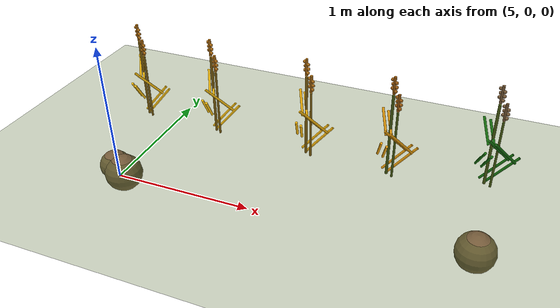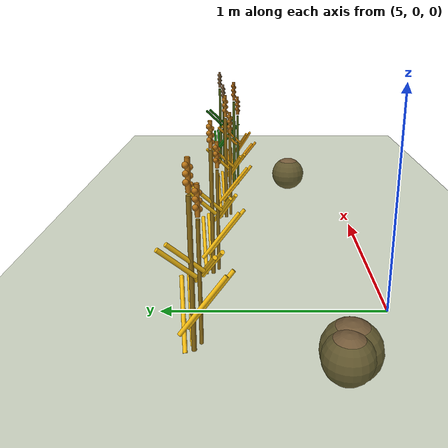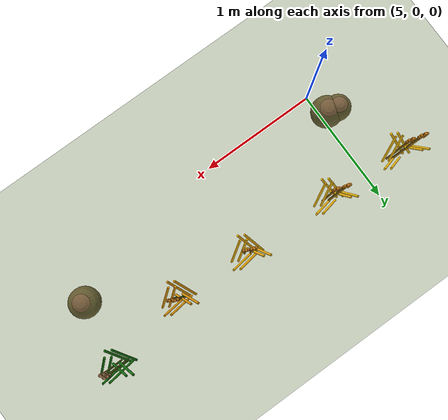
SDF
<sdf version="1.6">
 <world name="default">
  <model name="ground">
   <static>true</static>
   <link name="link">
    <collision name="col"><geometry><plane><normal>0 0 1</normal><size>40 40</size></plane></geometry></collision>
    <visual name="vis">
     <geometry><plane><normal>0 0 1</normal><size>40 40</size></plane></geometry>
     <material><ambient>0.30 0.40 0.15 1</ambient><diffuse>0.30 0.40 0.15 1</diffuse></material>
    </visual>
   </link>
  </model>
  <model name="plant_16">
   <static>true</static>
   <pose>4.72 0.82 0 0 0 0</pose>
   <link name="link">
    <visual name="stem_0">
     <pose>0.000 0.000 0.320 0.000 0.000 0.000</pose>
     <geometry><cylinder><radius>0.01</radius><length>0.64</length></cylinder></geometry>
     <material><ambient>0.55 0.42 0.08 1</ambient><diffuse>0.55 0.42 0.08 1</diffuse></material>
    </visual>
    <visual name="leaf_0_0">
     <pose>0.055 0.045 0.130 0.000 0.700 0.150</pose>
     <geometry><cylinder><radius>0.009</radius><length>0.3</length></cylinder></geometry>
     <material><ambient>0.95 0.73 0.06 1</ambient><diffuse>0.95 0.73 0.06 1</diffuse></material>
    </visual>
    <visual name="leaf_0_1">
     <pose>-0.055 -0.045 0.230 0.000 -0.720 1.900</pose>
     <geometry><cylinder><radius>0.009</radius><length>0.28</length></cylinder></geometry>
     <material><ambient>0.95 0.73 0.06 1</ambient><diffuse>0.95 0.73 0.06 1</diffuse></material>
    </visual>
    <visual name="leaf_0_2">
     <pose>0.055 -0.045 0.320 0.000 0.780 3.700</pose>
     <geometry><cylinder><radius>0.009</radius><length>0.24</length></cylinder></geometry>
     <material><ambient>0.95 0.73 0.06 1</ambient><diffuse>0.95 0.73 0.06 1</diffuse></material>
    </visual>
    <visual name="leaf_0_3">
     <pose>-0.055 0.045 0.400 0.000 -0.800 5.200</pose>
     <geometry><cylinder><radius>0.009</radius><length>0.2</length></cylinder></geometry>
     <material><ambient>0.95 0.73 0.06 1</ambient><diffuse>0.95 0.73 0.06 1</diffuse></material>
    </visual>
    <visual name="stem_1">
     <pose>0.045 -0.025 0.265 0.000 0.000 0.000</pose>
     <geometry><cylinder><radius>0.008</radius><length>0.53</length></cylinder></geometry>
     <material><ambient>0.55 0.42 0.08 1</ambient><diffuse>0.55 0.42 0.08 1</diffuse></material>
    </visual>
    <visual name="leaf_1_0">
     <pose>0.100 0.020 0.130 0.000 0.700 0.150</pose>
     <geometry><cylinder><radius>0.009</radius><length>0.3</length></cylinder></geometry>
     <material><ambient>0.95 0.73 0.06 1</ambient><diffuse>0.95 0.73 0.06 1</diffuse></material>
    </visual>
    <visual name="leaf_1_1">
     <pose>-0.010 -0.070 0.230 0.000 -0.720 1.900</pose>
     <geometry><cylinder><radius>0.009</radius><length>0.28</length></cylinder></geometry>
     <material><ambient>0.95 0.73 0.06 1</ambient><diffuse>0.95 0.73 0.06 1</diffuse></material>
    </visual>
    <visual name="leaf_1_2">
     <pose>0.100 -0.070 0.320 0.000 0.780 3.700</pose>
     <geometry><cylinder><radius>0.009</radius><length>0.24</length></cylinder></geometry>
     <material><ambient>0.95 0.73 0.06 1</ambient><diffuse>0.95 0.73 0.06 1</diffuse></material>
    </visual>
    <visual name="leaf_1_3">
     <pose>-0.010 0.020 0.400 0.000 -0.800 5.200</pose>
     <geometry><cylinder><radius>0.009</radius><length>0.2</length></cylinder></geometry>
     <material><ambient>0.95 0.73 0.06 1</ambient><diffuse>0.95 0.73 0.06 1</diffuse></material>
    </visual>
    <visual name="ear_axis_0">
     <pose>0.000 0.000 0.715 0.000 0.000 0.000</pose>
     <geometry><cylinder><radius>0.010</radius><length>0.13</length></cylinder></geometry>
     <material><ambient>0.72 0.45 0.08 1</ambient><diffuse>0.72 0.45 0.08 1</diffuse></material>
    </visual>
    <visual name="grain_0_0">
     <pose>0.012 -0.006 0.675 0.000 0.000 0.000</pose>
     <geometry><sphere><radius>0.012</radius></sphere></geometry>
     <material><ambient>0.72 0.45 0.08 1</ambient><diffuse>0.72 0.45 0.08 1</diffuse></material>
    </visual>
    <visual name="grain_0_1">
     <pose>-0.014 0.006 0.691 0.000 0.000 0.000</pose>
     <geometry><sphere><radius>0.012</radius></sphere></geometry>
     <material><ambient>0.72 0.45 0.08 1</ambient><diffuse>0.72 0.45 0.08 1</diffuse></material>
    </visual>
    <visual name="grain_0_2">
     <pose>0.016 -0.006 0.707 0.000 0.000 0.000</pose>
     <geometry><sphere><radius>0.012</radius></sphere></geometry>
     <material><ambient>0.72 0.45 0.08 1</ambient><diffuse>0.72 0.45 0.08 1</diffuse></material>
    </visual>
    <visual name="grain_0_3">
     <pose>-0.012 0.006 0.723 0.000 0.000 0.000</pose>
     <geometry><sphere><radius>0.012</radius></sphere></geometry>
     <material><ambient>0.72 0.45 0.08 1</ambient><diffuse>0.72 0.45 0.08 1</diffuse></material>
    </visual>
    <visual name="grain_0_4">
     <pose>0.014 -0.006 0.739 0.000 0.000 0.000</pose>
     <geometry><sphere><radius>0.012</radius></sphere></geometry>
     <material><ambient>0.72 0.45 0.08 1</ambient><diffuse>0.72 0.45 0.08 1</diffuse></material>
    </visual>
    <visual name="grain_0_5">
     <pose>-0.016 0.006 0.755 0.000 0.000 0.000</pose>
     <geometry><sphere><radius>0.012</radius></sphere></geometry>
     <material><ambient>0.72 0.45 0.08 1</ambient><diffuse>0.72 0.45 0.08 1</diffuse></material>
    </visual>
    <visual name="ear_axis_1">
     <pose>0.045 -0.025 0.605 0.000 0.000 0.000</pose>
     <geometry><cylinder><radius>0.010</radius><length>0.13</length></cylinder></geometry>
     <material><ambient>0.72 0.45 0.08 1</ambient><diffuse>0.72 0.45 0.08 1</diffuse></material>
    </visual>
    <visual name="grain_1_0">
     <pose>0.057 -0.031 0.565 0.000 0.000 0.000</pose>
     <geometry><sphere><radius>0.012</radius></sphere></geometry>
     <material><ambient>0.72 0.45 0.08 1</ambient><diffuse>0.72 0.45 0.08 1</diffuse></material>
    </visual>
    <visual name="grain_1_1">
     <pose>0.031 -0.019 0.581 0.000 0.000 0.000</pose>
     <geometry><sphere><radius>0.012</radius></sphere></geometry>
     <material><ambient>0.72 0.45 0.08 1</ambient><diffuse>0.72 0.45 0.08 1</diffuse></material>
    </visual>
    <visual name="grain_1_2">
     <pose>0.061 -0.031 0.597 0.000 0.000 0.000</pose>
     <geometry><sphere><radius>0.012</radius></sphere></geometry>
     <material><ambient>0.72 0.45 0.08 1</ambient><diffuse>0.72 0.45 0.08 1</diffuse></material>
    </visual>
    <visual name="grain_1_3">
     <pose>0.033 -0.019 0.613 0.000 0.000 0.000</pose>
     <geometry><sphere><radius>0.012</radius></sphere></geometry>
     <material><ambient>0.72 0.45 0.08 1</ambient><diffuse>0.72 0.45 0.08 1</diffuse></material>
    </visual>
    <visual name="grain_1_4">
     <pose>0.059 -0.031 0.629 0.000 0.000 0.000</pose>
     <geometry><sphere><radius>0.012</radius></sphere></geometry>
     <material><ambient>0.72 0.45 0.08 1</ambient><diffuse>0.72 0.45 0.08 1</diffuse></material>
    </visual>
    <visual name="grain_1_5">
     <pose>0.029 -0.019 0.645 0.000 0.000 0.000</pose>
     <geometry><sphere><radius>0.012</radius></sphere></geometry>
     <material><ambient>0.72 0.45 0.08 1</ambient><diffuse>0.72 0.45 0.08 1</diffuse></material>
    </visual>
   </link>
  </model>
  <model name="plant_17">
   <static>true</static>
   <pose>5.36 0.79 0 0 0 0</pose>
   <link name="link">
    <visual name="stem_0">
     <pose>0.000 0.000 0.320 0.000 0.000 0.000</pose>
     <geometry><cylinder><radius>0.01</radius><length>0.64</length></cylinder></geometry>
     <material><ambient>0.55 0.42 0.08 1</ambient><diffuse>0.55 0.42 0.08 1</diffuse></material>
    </visual>
    <visual name="leaf_0_0">
     <pose>0.055 0.045 0.130 0.000 0.700 0.150</pose>
     <geometry><cylinder><radius>0.009</radius><length>0.3</length></cylinder></geometry>
     <material><ambient>0.95 0.73 0.06 1</ambient><diffuse>0.95 0.73 0.06 1</diffuse></material>
    </visual>
    <visual name="leaf_0_1">
     <pose>-0.055 -0.045 0.230 0.000 -0.720 1.900</pose>
     <geometry><cylinder><radius>0.009</radius><length>0.28</length></cylinder></geometry>
     <material><ambient>0.95 0.73 0.06 1</ambient><diffuse>0.95 0.73 0.06 1</diffuse></material>
    </visual>
    <visual name="leaf_0_2">
     <pose>0.055 -0.045 0.320 0.000 0.780 3.700</pose>
     <geometry><cylinder><radius>0.009</radius><length>0.24</length></cylinder></geometry>
     <material><ambient>0.95 0.73 0.06 1</ambient><diffuse>0.95 0.73 0.06 1</diffuse></material>
    </visual>
    <visual name="leaf_0_3">
     <pose>-0.055 0.045 0.400 0.000 -0.800 5.200</pose>
     <geometry><cylinder><radius>0.009</radius><length>0.2</length></cylinder></geometry>
     <material><ambient>0.95 0.73 0.06 1</ambient><diffuse>0.95 0.73 0.06 1</diffuse></material>
    </visual>
    <visual name="stem_1">
     <pose>0.045 -0.025 0.265 0.000 0.000 0.000</pose>
     <geometry><cylinder><radius>0.008</radius><length>0.53</length></cylinder></geometry>
     <material><ambient>0.55 0.42 0.08 1</ambient><diffuse>0.55 0.42 0.08 1</diffuse></material>
    </visual>
    <visual name="leaf_1_0">
     <pose>0.100 0.020 0.130 0.000 0.700 0.150</pose>
     <geometry><cylinder><radius>0.009</radius><length>0.3</length></cylinder></geometry>
     <material><ambient>0.95 0.73 0.06 1</ambient><diffuse>0.95 0.73 0.06 1</diffuse></material>
    </visual>
    <visual name="leaf_1_1">
     <pose>-0.010 -0.070 0.230 0.000 -0.720 1.900</pose>
     <geometry><cylinder><radius>0.009</radius><length>0.28</length></cylinder></geometry>
     <material><ambient>0.95 0.73 0.06 1</ambient><diffuse>0.95 0.73 0.06 1</diffuse></material>
    </visual>
    <visual name="leaf_1_2">
     <pose>0.100 -0.070 0.320 0.000 0.780 3.700</pose>
     <geometry><cylinder><radius>0.009</radius><length>0.24</length></cylinder></geometry>
     <material><ambient>0.95 0.73 0.06 1</ambient><diffuse>0.95 0.73 0.06 1</diffuse></material>
    </visual>
    <visual name="leaf_1_3">
     <pose>-0.010 0.020 0.400 0.000 -0.800 5.200</pose>
     <geometry><cylinder><radius>0.009</radius><length>0.2</length></cylinder></geometry>
     <material><ambient>0.95 0.73 0.06 1</ambient><diffuse>0.95 0.73 0.06 1</diffuse></material>
    </visual>
    <visual name="ear_axis_0">
     <pose>0.000 0.000 0.715 0.000 0.000 0.000</pose>
     <geometry><cylinder><radius>0.010</radius><length>0.13</length></cylinder></geometry>
     <material><ambient>0.72 0.45 0.08 1</ambient><diffuse>0.72 0.45 0.08 1</diffuse></material>
    </visual>
    <visual name="grain_0_0">
     <pose>0.012 -0.006 0.675 0.000 0.000 0.000</pose>
     <geometry><sphere><radius>0.012</radius></sphere></geometry>
     <material><ambient>0.72 0.45 0.08 1</ambient><diffuse>0.72 0.45 0.08 1</diffuse></material>
    </visual>
    <visual name="grain_0_1">
     <pose>-0.014 0.006 0.691 0.000 0.000 0.000</pose>
     <geometry><sphere><radius>0.012</radius></sphere></geometry>
     <material><ambient>0.72 0.45 0.08 1</ambient><diffuse>0.72 0.45 0.08 1</diffuse></material>
    </visual>
    <visual name="grain_0_2">
     <pose>0.016 -0.006 0.707 0.000 0.000 0.000</pose>
     <geometry><sphere><radius>0.012</radius></sphere></geometry>
     <material><ambient>0.72 0.45 0.08 1</ambient><diffuse>0.72 0.45 0.08 1</diffuse></material>
    </visual>
    <visual name="grain_0_3">
     <pose>-0.012 0.006 0.723 0.000 0.000 0.000</pose>
     <geometry><sphere><radius>0.012</radius></sphere></geometry>
     <material><ambient>0.72 0.45 0.08 1</ambient><diffuse>0.72 0.45 0.08 1</diffuse></material>
    </visual>
    <visual name="grain_0_4">
     <pose>0.014 -0.006 0.739 0.000 0.000 0.000</pose>
     <geometry><sphere><radius>0.012</radius></sphere></geometry>
     <material><ambient>0.72 0.45 0.08 1</ambient><diffuse>0.72 0.45 0.08 1</diffuse></material>
    </visual>
    <visual name="grain_0_5">
     <pose>-0.016 0.006 0.755 0.000 0.000 0.000</pose>
     <geometry><sphere><radius>0.012</radius></sphere></geometry>
     <material><ambient>0.72 0.45 0.08 1</ambient><diffuse>0.72 0.45 0.08 1</diffuse></material>
    </visual>
    <visual name="ear_axis_1">
     <pose>0.045 -0.025 0.605 0.000 0.000 0.000</pose>
     <geometry><cylinder><radius>0.010</radius><length>0.13</length></cylinder></geometry>
     <material><ambient>0.72 0.45 0.08 1</ambient><diffuse>0.72 0.45 0.08 1</diffuse></material>
    </visual>
    <visual name="grain_1_0">
     <pose>0.057 -0.031 0.565 0.000 0.000 0.000</pose>
     <geometry><sphere><radius>0.012</radius></sphere></geometry>
     <material><ambient>0.72 0.45 0.08 1</ambient><diffuse>0.72 0.45 0.08 1</diffuse></material>
    </visual>
    <visual name="grain_1_1">
     <pose>0.031 -0.019 0.581 0.000 0.000 0.000</pose>
     <geometry><sphere><radius>0.012</radius></sphere></geometry>
     <material><ambient>0.72 0.45 0.08 1</ambient><diffuse>0.72 0.45 0.08 1</diffuse></material>
    </visual>
    <visual name="grain_1_2">
     <pose>0.061 -0.031 0.597 0.000 0.000 0.000</pose>
     <geometry><sphere><radius>0.012</radius></sphere></geometry>
     <material><ambient>0.72 0.45 0.08 1</ambient><diffuse>0.72 0.45 0.08 1</diffuse></material>
    </visual>
    <visual name="grain_1_3">
     <pose>0.033 -0.019 0.613 0.000 0.000 0.000</pose>
     <geometry><sphere><radius>0.012</radius></sphere></geometry>
     <material><ambient>0.72 0.45 0.08 1</ambient><diffuse>0.72 0.45 0.08 1</diffuse></material>
    </visual>
    <visual name="grain_1_4">
     <pose>0.059 -0.031 0.629 0.000 0.000 0.000</pose>
     <geometry><sphere><radius>0.012</radius></sphere></geometry>
     <material><ambient>0.72 0.45 0.08 1</ambient><diffuse>0.72 0.45 0.08 1</diffuse></material>
    </visual>
    <visual name="grain_1_5">
     <pose>0.029 -0.019 0.645 0.000 0.000 0.000</pose>
     <geometry><sphere><radius>0.012</radius></sphere></geometry>
     <material><ambient>0.72 0.45 0.08 1</ambient><diffuse>0.72 0.45 0.08 1</diffuse></material>
    </visual>
   </link>
  </model>
  <model name="plant_18">
   <static>true</static>
   <pose>6.13 0.76 0 0 0 0</pose>
   <link name="link">
    <visual name="stem_0">
     <pose>0.000 0.000 0.320 0.000 0.000 0.000</pose>
     <geometry><cylinder><radius>0.01</radius><length>0.64</length></cylinder></geometry>
     <material><ambient>0.55 0.42 0.08 1</ambient><diffuse>0.55 0.42 0.08 1</diffuse></material>
    </visual>
    <visual name="leaf_0_0">
     <pose>0.055 0.045 0.130 0.000 0.700 0.150</pose>
     <geometry><cylinder><radius>0.009</radius><length>0.3</length></cylinder></geometry>
     <material><ambient>0.92 0.68 0.04 1</ambient><diffuse>0.92 0.68 0.04 1</diffuse></material>
    </visual>
    <visual name="leaf_0_1">
     <pose>-0.055 -0.045 0.230 0.000 -0.720 1.900</pose>
     <geometry><cylinder><radius>0.009</radius><length>0.28</length></cylinder></geometry>
     <material><ambient>0.92 0.68 0.04 1</ambient><diffuse>0.92 0.68 0.04 1</diffuse></material>
    </visual>
    <visual name="leaf_0_2">
     <pose>0.055 -0.045 0.320 0.000 0.780 3.700</pose>
     <geometry><cylinder><radius>0.009</radius><length>0.24</length></cylinder></geometry>
     <material><ambient>0.92 0.68 0.04 1</ambient><diffuse>0.92 0.68 0.04 1</diffuse></material>
    </visual>
    <visual name="leaf_0_3">
     <pose>-0.055 0.045 0.400 0.000 -0.800 5.200</pose>
     <geometry><cylinder><radius>0.009</radius><length>0.2</length></cylinder></geometry>
     <material><ambient>0.92 0.68 0.04 1</ambient><diffuse>0.92 0.68 0.04 1</diffuse></material>
    </visual>
    <visual name="stem_1">
     <pose>0.045 -0.025 0.265 0.000 0.000 0.000</pose>
     <geometry><cylinder><radius>0.008</radius><length>0.53</length></cylinder></geometry>
     <material><ambient>0.55 0.42 0.08 1</ambient><diffuse>0.55 0.42 0.08 1</diffuse></material>
    </visual>
    <visual name="leaf_1_0">
     <pose>0.100 0.020 0.130 0.000 0.700 0.150</pose>
     <geometry><cylinder><radius>0.009</radius><length>0.3</length></cylinder></geometry>
     <material><ambient>0.92 0.68 0.04 1</ambient><diffuse>0.92 0.68 0.04 1</diffuse></material>
    </visual>
    <visual name="leaf_1_1">
     <pose>-0.010 -0.070 0.230 0.000 -0.720 1.900</pose>
     <geometry><cylinder><radius>0.009</radius><length>0.28</length></cylinder></geometry>
     <material><ambient>0.92 0.68 0.04 1</ambient><diffuse>0.92 0.68 0.04 1</diffuse></material>
    </visual>
    <visual name="leaf_1_2">
     <pose>0.100 -0.070 0.320 0.000 0.780 3.700</pose>
     <geometry><cylinder><radius>0.009</radius><length>0.24</length></cylinder></geometry>
     <material><ambient>0.92 0.68 0.04 1</ambient><diffuse>0.92 0.68 0.04 1</diffuse></material>
    </visual>
    <visual name="leaf_1_3">
     <pose>-0.010 0.020 0.400 0.000 -0.800 5.200</pose>
     <geometry><cylinder><radius>0.009</radius><length>0.2</length></cylinder></geometry>
     <material><ambient>0.92 0.68 0.04 1</ambient><diffuse>0.92 0.68 0.04 1</diffuse></material>
    </visual>
    <visual name="ear_axis_0">
     <pose>0.000 0.000 0.715 0.000 0.000 0.000</pose>
     <geometry><cylinder><radius>0.010</radius><length>0.13</length></cylinder></geometry>
     <material><ambient>0.68 0.43 0.08 1</ambient><diffuse>0.68 0.43 0.08 1</diffuse></material>
    </visual>
    <visual name="grain_0_0">
     <pose>0.012 -0.006 0.675 0.000 0.000 0.000</pose>
     <geometry><sphere><radius>0.012</radius></sphere></geometry>
     <material><ambient>0.68 0.43 0.08 1</ambient><diffuse>0.68 0.43 0.08 1</diffuse></material>
    </visual>
    <visual name="grain_0_1">
     <pose>-0.014 0.006 0.691 0.000 0.000 0.000</pose>
     <geometry><sphere><radius>0.012</radius></sphere></geometry>
     <material><ambient>0.68 0.43 0.08 1</ambient><diffuse>0.68 0.43 0.08 1</diffuse></material>
    </visual>
    <visual name="grain_0_2">
     <pose>0.016 -0.006 0.707 0.000 0.000 0.000</pose>
     <geometry><sphere><radius>0.012</radius></sphere></geometry>
     <material><ambient>0.68 0.43 0.08 1</ambient><diffuse>0.68 0.43 0.08 1</diffuse></material>
    </visual>
    <visual name="grain_0_3">
     <pose>-0.012 0.006 0.723 0.000 0.000 0.000</pose>
     <geometry><sphere><radius>0.012</radius></sphere></geometry>
     <material><ambient>0.68 0.43 0.08 1</ambient><diffuse>0.68 0.43 0.08 1</diffuse></material>
    </visual>
    <visual name="grain_0_4">
     <pose>0.014 -0.006 0.739 0.000 0.000 0.000</pose>
     <geometry><sphere><radius>0.012</radius></sphere></geometry>
     <material><ambient>0.68 0.43 0.08 1</ambient><diffuse>0.68 0.43 0.08 1</diffuse></material>
    </visual>
    <visual name="grain_0_5">
     <pose>-0.016 0.006 0.755 0.000 0.000 0.000</pose>
     <geometry><sphere><radius>0.012</radius></sphere></geometry>
     <material><ambient>0.68 0.43 0.08 1</ambient><diffuse>0.68 0.43 0.08 1</diffuse></material>
    </visual>
    <visual name="ear_axis_1">
     <pose>0.045 -0.025 0.605 0.000 0.000 0.000</pose>
     <geometry><cylinder><radius>0.010</radius><length>0.13</length></cylinder></geometry>
     <material><ambient>0.68 0.43 0.08 1</ambient><diffuse>0.68 0.43 0.08 1</diffuse></material>
    </visual>
    <visual name="grain_1_0">
     <pose>0.057 -0.031 0.565 0.000 0.000 0.000</pose>
     <geometry><sphere><radius>0.012</radius></sphere></geometry>
     <material><ambient>0.68 0.43 0.08 1</ambient><diffuse>0.68 0.43 0.08 1</diffuse></material>
    </visual>
    <visual name="grain_1_1">
     <pose>0.031 -0.019 0.581 0.000 0.000 0.000</pose>
     <geometry><sphere><radius>0.012</radius></sphere></geometry>
     <material><ambient>0.68 0.43 0.08 1</ambient><diffuse>0.68 0.43 0.08 1</diffuse></material>
    </visual>
    <visual name="grain_1_2">
     <pose>0.061 -0.031 0.597 0.000 0.000 0.000</pose>
     <geometry><sphere><radius>0.012</radius></sphere></geometry>
     <material><ambient>0.68 0.43 0.08 1</ambient><diffuse>0.68 0.43 0.08 1</diffuse></material>
    </visual>
    <visual name="grain_1_3">
     <pose>0.033 -0.019 0.613 0.000 0.000 0.000</pose>
     <geometry><sphere><radius>0.012</radius></sphere></geometry>
     <material><ambient>0.68 0.43 0.08 1</ambient><diffuse>0.68 0.43 0.08 1</diffuse></material>
    </visual>
    <visual name="grain_1_4">
     <pose>0.059 -0.031 0.629 0.000 0.000 0.000</pose>
     <geometry><sphere><radius>0.012</radius></sphere></geometry>
     <material><ambient>0.68 0.43 0.08 1</ambient><diffuse>0.68 0.43 0.08 1</diffuse></material>
    </visual>
    <visual name="grain_1_5">
     <pose>0.029 -0.019 0.645 0.000 0.000 0.000</pose>
     <geometry><sphere><radius>0.012</radius></sphere></geometry>
     <material><ambient>0.68 0.43 0.08 1</ambient><diffuse>0.68 0.43 0.08 1</diffuse></material>
    </visual>
   </link>
  </model>
  <model name="plant_19">
   <static>true</static>
   <pose>6.76 0.73 0 0 0 0</pose>
   <link name="link">
    <visual name="stem_0">
     <pose>0.000 0.000 0.320 0.000 0.000 0.000</pose>
     <geometry><cylinder><radius>0.01</radius><length>0.64</length></cylinder></geometry>
     <material><ambient>0.30 0.38 0.08 1</ambient><diffuse>0.30 0.38 0.08 1</diffuse></material>
    </visual>
    <visual name="leaf_0_0">
     <pose>0.055 0.045 0.130 0.000 0.700 0.150</pose>
     <geometry><cylinder><radius>0.009</radius><length>0.3</length></cylinder></geometry>
     <material><ambient>0.86 0.58 0.04 1</ambient><diffuse>0.86 0.58 0.04 1</diffuse></material>
    </visual>
    <visual name="leaf_0_1">
     <pose>-0.055 -0.045 0.230 0.000 -0.720 1.900</pose>
     <geometry><cylinder><radius>0.009</radius><length>0.28</length></cylinder></geometry>
     <material><ambient>0.86 0.58 0.04 1</ambient><diffuse>0.86 0.58 0.04 1</diffuse></material>
    </visual>
    <visual name="leaf_0_2">
     <pose>0.055 -0.045 0.320 0.000 0.780 3.700</pose>
     <geometry><cylinder><radius>0.009</radius><length>0.24</length></cylinder></geometry>
     <material><ambient>0.86 0.58 0.04 1</ambient><diffuse>0.86 0.58 0.04 1</diffuse></material>
    </visual>
    <visual name="leaf_0_3">
     <pose>-0.055 0.045 0.400 0.000 -0.800 5.200</pose>
     <geometry><cylinder><radius>0.009</radius><length>0.2</length></cylinder></geometry>
     <material><ambient>0.86 0.58 0.04 1</ambient><diffuse>0.86 0.58 0.04 1</diffuse></material>
    </visual>
    <visual name="stem_1">
     <pose>0.045 -0.025 0.265 0.000 0.000 0.000</pose>
     <geometry><cylinder><radius>0.008</radius><length>0.53</length></cylinder></geometry>
     <material><ambient>0.30 0.38 0.08 1</ambient><diffuse>0.30 0.38 0.08 1</diffuse></material>
    </visual>
    <visual name="leaf_1_0">
     <pose>0.100 0.020 0.130 0.000 0.700 0.150</pose>
     <geometry><cylinder><radius>0.009</radius><length>0.3</length></cylinder></geometry>
     <material><ambient>0.86 0.58 0.04 1</ambient><diffuse>0.86 0.58 0.04 1</diffuse></material>
    </visual>
    <visual name="leaf_1_1">
     <pose>-0.010 -0.070 0.230 0.000 -0.720 1.900</pose>
     <geometry><cylinder><radius>0.009</radius><length>0.28</length></cylinder></geometry>
     <material><ambient>0.86 0.58 0.04 1</ambient><diffuse>0.86 0.58 0.04 1</diffuse></material>
    </visual>
    <visual name="leaf_1_2">
     <pose>0.100 -0.070 0.320 0.000 0.780 3.700</pose>
     <geometry><cylinder><radius>0.009</radius><length>0.24</length></cylinder></geometry>
     <material><ambient>0.86 0.58 0.04 1</ambient><diffuse>0.86 0.58 0.04 1</diffuse></material>
    </visual>
    <visual name="leaf_1_3">
     <pose>-0.010 0.020 0.400 0.000 -0.800 5.200</pose>
     <geometry><cylinder><radius>0.009</radius><length>0.2</length></cylinder></geometry>
     <material><ambient>0.86 0.58 0.04 1</ambient><diffuse>0.86 0.58 0.04 1</diffuse></material>
    </visual>
    <visual name="ear_axis_0">
     <pose>0.000 0.000 0.715 0.000 0.000 0.000</pose>
     <geometry><cylinder><radius>0.010</radius><length>0.13</length></cylinder></geometry>
     <material><ambient>0.62 0.36 0.06 1</ambient><diffuse>0.62 0.36 0.06 1</diffuse></material>
    </visual>
    <visual name="grain_0_0">
     <pose>0.012 -0.006 0.675 0.000 0.000 0.000</pose>
     <geometry><sphere><radius>0.012</radius></sphere></geometry>
     <material><ambient>0.62 0.36 0.06 1</ambient><diffuse>0.62 0.36 0.06 1</diffuse></material>
    </visual>
    <visual name="grain_0_1">
     <pose>-0.014 0.006 0.691 0.000 0.000 0.000</pose>
     <geometry><sphere><radius>0.012</radius></sphere></geometry>
     <material><ambient>0.62 0.36 0.06 1</ambient><diffuse>0.62 0.36 0.06 1</diffuse></material>
    </visual>
    <visual name="grain_0_2">
     <pose>0.016 -0.006 0.707 0.000 0.000 0.000</pose>
     <geometry><sphere><radius>0.012</radius></sphere></geometry>
     <material><ambient>0.62 0.36 0.06 1</ambient><diffuse>0.62 0.36 0.06 1</diffuse></material>
    </visual>
    <visual name="grain_0_3">
     <pose>-0.012 0.006 0.723 0.000 0.000 0.000</pose>
     <geometry><sphere><radius>0.012</radius></sphere></geometry>
     <material><ambient>0.62 0.36 0.06 1</ambient><diffuse>0.62 0.36 0.06 1</diffuse></material>
    </visual>
    <visual name="grain_0_4">
     <pose>0.014 -0.006 0.739 0.000 0.000 0.000</pose>
     <geometry><sphere><radius>0.012</radius></sphere></geometry>
     <material><ambient>0.62 0.36 0.06 1</ambient><diffuse>0.62 0.36 0.06 1</diffuse></material>
    </visual>
    <visual name="grain_0_5">
     <pose>-0.016 0.006 0.755 0.000 0.000 0.000</pose>
     <geometry><sphere><radius>0.012</radius></sphere></geometry>
     <material><ambient>0.62 0.36 0.06 1</ambient><diffuse>0.62 0.36 0.06 1</diffuse></material>
    </visual>
    <visual name="ear_axis_1">
     <pose>0.045 -0.025 0.605 0.000 0.000 0.000</pose>
     <geometry><cylinder><radius>0.010</radius><length>0.13</length></cylinder></geometry>
     <material><ambient>0.62 0.36 0.06 1</ambient><diffuse>0.62 0.36 0.06 1</diffuse></material>
    </visual>
    <visual name="grain_1_0">
     <pose>0.057 -0.031 0.565 0.000 0.000 0.000</pose>
     <geometry><sphere><radius>0.012</radius></sphere></geometry>
     <material><ambient>0.62 0.36 0.06 1</ambient><diffuse>0.62 0.36 0.06 1</diffuse></material>
    </visual>
    <visual name="grain_1_1">
     <pose>0.031 -0.019 0.581 0.000 0.000 0.000</pose>
     <geometry><sphere><radius>0.012</radius></sphere></geometry>
     <material><ambient>0.62 0.36 0.06 1</ambient><diffuse>0.62 0.36 0.06 1</diffuse></material>
    </visual>
    <visual name="grain_1_2">
     <pose>0.061 -0.031 0.597 0.000 0.000 0.000</pose>
     <geometry><sphere><radius>0.012</radius></sphere></geometry>
     <material><ambient>0.62 0.36 0.06 1</ambient><diffuse>0.62 0.36 0.06 1</diffuse></material>
    </visual>
    <visual name="grain_1_3">
     <pose>0.033 -0.019 0.613 0.000 0.000 0.000</pose>
     <geometry><sphere><radius>0.012</radius></sphere></geometry>
     <material><ambient>0.62 0.36 0.06 1</ambient><diffuse>0.62 0.36 0.06 1</diffuse></material>
    </visual>
    <visual name="grain_1_4">
     <pose>0.059 -0.031 0.629 0.000 0.000 0.000</pose>
     <geometry><sphere><radius>0.012</radius></sphere></geometry>
     <material><ambient>0.62 0.36 0.06 1</ambient><diffuse>0.62 0.36 0.06 1</diffuse></material>
    </visual>
    <visual name="grain_1_5">
     <pose>0.029 -0.019 0.645 0.000 0.000 0.000</pose>
     <geometry><sphere><radius>0.012</radius></sphere></geometry>
     <material><ambient>0.62 0.36 0.06 1</ambient><diffuse>0.62 0.36 0.06 1</diffuse></material>
    </visual>
   </link>
  </model>
  <model name="plant_20">
   <static>true</static>
   <pose>7.43 0.87 0 0 0 0</pose>
   <link name="link">
    <visual name="stem_0">
     <pose>0.000 0.000 0.320 0.000 0.000 0.000</pose>
     <geometry><cylinder><radius>0.01</radius><length>0.64</length></cylinder></geometry>
     <material><ambient>0.30 0.38 0.08 1</ambient><diffuse>0.30 0.38 0.08 1</diffuse></material>
    </visual>
    <visual name="leaf_0_0">
     <pose>0.055 0.045 0.130 0.000 0.700 0.150</pose>
     <geometry><cylinder><radius>0.009</radius><length>0.3</length></cylinder></geometry>
     <material><ambient>0.08 0.42 0.05 1</ambient><diffuse>0.08 0.42 0.05 1</diffuse></material>
    </visual>
    <visual name="leaf_0_1">
     <pose>-0.055 -0.045 0.230 0.000 -0.720 1.900</pose>
     <geometry><cylinder><radius>0.009</radius><length>0.28</length></cylinder></geometry>
     <material><ambient>0.08 0.42 0.05 1</ambient><diffuse>0.08 0.42 0.05 1</diffuse></material>
    </visual>
    <visual name="leaf_0_2">
     <pose>0.055 -0.045 0.320 0.000 0.780 3.700</pose>
     <geometry><cylinder><radius>0.009</radius><length>0.24</length></cylinder></geometry>
     <material><ambient>0.08 0.42 0.05 1</ambient><diffuse>0.08 0.42 0.05 1</diffuse></material>
    </visual>
    <visual name="leaf_0_3">
     <pose>-0.055 0.045 0.400 0.000 -0.800 5.200</pose>
     <geometry><cylinder><radius>0.009</radius><length>0.2</length></cylinder></geometry>
     <material><ambient>0.08 0.42 0.05 1</ambient><diffuse>0.08 0.42 0.05 1</diffuse></material>
    </visual>
    <visual name="stem_1">
     <pose>0.045 -0.025 0.265 0.000 0.000 0.000</pose>
     <geometry><cylinder><radius>0.008</radius><length>0.53</length></cylinder></geometry>
     <material><ambient>0.30 0.38 0.08 1</ambient><diffuse>0.30 0.38 0.08 1</diffuse></material>
    </visual>
    <visual name="leaf_1_0">
     <pose>0.100 0.020 0.130 0.000 0.700 0.150</pose>
     <geometry><cylinder><radius>0.009</radius><length>0.3</length></cylinder></geometry>
     <material><ambient>0.08 0.42 0.05 1</ambient><diffuse>0.08 0.42 0.05 1</diffuse></material>
    </visual>
    <visual name="leaf_1_1">
     <pose>-0.010 -0.070 0.230 0.000 -0.720 1.900</pose>
     <geometry><cylinder><radius>0.009</radius><length>0.28</length></cylinder></geometry>
     <material><ambient>0.08 0.42 0.05 1</ambient><diffuse>0.08 0.42 0.05 1</diffuse></material>
    </visual>
    <visual name="leaf_1_2">
     <pose>0.100 -0.070 0.320 0.000 0.780 3.700</pose>
     <geometry><cylinder><radius>0.009</radius><length>0.24</length></cylinder></geometry>
     <material><ambient>0.08 0.42 0.05 1</ambient><diffuse>0.08 0.42 0.05 1</diffuse></material>
    </visual>
    <visual name="leaf_1_3">
     <pose>-0.010 0.020 0.400 0.000 -0.800 5.200</pose>
     <geometry><cylinder><radius>0.009</radius><length>0.2</length></cylinder></geometry>
     <material><ambient>0.08 0.42 0.05 1</ambient><diffuse>0.08 0.42 0.05 1</diffuse></material>
    </visual>
    <visual name="ear_axis_0">
     <pose>0.000 0.000 0.715 0.000 0.000 0.000</pose>
     <geometry><cylinder><radius>0.010</radius><length>0.13</length></cylinder></geometry>
     <material><ambient>0.48 0.36 0.22 1</ambient><diffuse>0.48 0.36 0.22 1</diffuse></material>
    </visual>
    <visual name="grain_0_0">
     <pose>0.012 -0.006 0.675 0.000 0.000 0.000</pose>
     <geometry><sphere><radius>0.012</radius></sphere></geometry>
     <material><ambient>0.48 0.36 0.22 1</ambient><diffuse>0.48 0.36 0.22 1</diffuse></material>
    </visual>
    <visual name="grain_0_1">
     <pose>-0.014 0.006 0.691 0.000 0.000 0.000</pose>
     <geometry><sphere><radius>0.012</radius></sphere></geometry>
     <material><ambient>0.48 0.36 0.22 1</ambient><diffuse>0.48 0.36 0.22 1</diffuse></material>
    </visual>
    <visual name="grain_0_2">
     <pose>0.016 -0.006 0.707 0.000 0.000 0.000</pose>
     <geometry><sphere><radius>0.012</radius></sphere></geometry>
     <material><ambient>0.48 0.36 0.22 1</ambient><diffuse>0.48 0.36 0.22 1</diffuse></material>
    </visual>
    <visual name="grain_0_3">
     <pose>-0.012 0.006 0.723 0.000 0.000 0.000</pose>
     <geometry><sphere><radius>0.012</radius></sphere></geometry>
     <material><ambient>0.48 0.36 0.22 1</ambient><diffuse>0.48 0.36 0.22 1</diffuse></material>
    </visual>
    <visual name="grain_0_4">
     <pose>0.014 -0.006 0.739 0.000 0.000 0.000</pose>
     <geometry><sphere><radius>0.012</radius></sphere></geometry>
     <material><ambient>0.48 0.36 0.22 1</ambient><diffuse>0.48 0.36 0.22 1</diffuse></material>
    </visual>
    <visual name="grain_0_5">
     <pose>-0.016 0.006 0.755 0.000 0.000 0.000</pose>
     <geometry><sphere><radius>0.012</radius></sphere></geometry>
     <material><ambient>0.48 0.36 0.22 1</ambient><diffuse>0.48 0.36 0.22 1</diffuse></material>
    </visual>
    <visual name="ear_axis_1">
     <pose>0.045 -0.025 0.605 0.000 0.000 0.000</pose>
     <geometry><cylinder><radius>0.010</radius><length>0.13</length></cylinder></geometry>
     <material><ambient>0.48 0.36 0.22 1</ambient><diffuse>0.48 0.36 0.22 1</diffuse></material>
    </visual>
    <visual name="grain_1_0">
     <pose>0.057 -0.031 0.565 0.000 0.000 0.000</pose>
     <geometry><sphere><radius>0.012</radius></sphere></geometry>
     <material><ambient>0.48 0.36 0.22 1</ambient><diffuse>0.48 0.36 0.22 1</diffuse></material>
    </visual>
    <visual name="grain_1_1">
     <pose>0.031 -0.019 0.581 0.000 0.000 0.000</pose>
     <geometry><sphere><radius>0.012</radius></sphere></geometry>
     <material><ambient>0.48 0.36 0.22 1</ambient><diffuse>0.48 0.36 0.22 1</diffuse></material>
    </visual>
    <visual name="grain_1_2">
     <pose>0.061 -0.031 0.597 0.000 0.000 0.000</pose>
     <geometry><sphere><radius>0.012</radius></sphere></geometry>
     <material><ambient>0.48 0.36 0.22 1</ambient><diffuse>0.48 0.36 0.22 1</diffuse></material>
    </visual>
    <visual name="grain_1_3">
     <pose>0.033 -0.019 0.613 0.000 0.000 0.000</pose>
     <geometry><sphere><radius>0.012</radius></sphere></geometry>
     <material><ambient>0.48 0.36 0.22 1</ambient><diffuse>0.48 0.36 0.22 1</diffuse></material>
    </visual>
    <visual name="grain_1_4">
     <pose>0.059 -0.031 0.629 0.000 0.000 0.000</pose>
     <geometry><sphere><radius>0.012</radius></sphere></geometry>
     <material><ambient>0.48 0.36 0.22 1</ambient><diffuse>0.48 0.36 0.22 1</diffuse></material>
    </visual>
    <visual name="grain_1_5">
     <pose>0.029 -0.019 0.645 0.000 0.000 0.000</pose>
     <geometry><sphere><radius>0.012</radius></sphere></geometry>
     <material><ambient>0.48 0.36 0.22 1</ambient><diffuse>0.48 0.36 0.22 1</diffuse></material>
    </visual>
   </link>
  </model>
  <model name="bump_1_01">
   <static>true</static>
   <pose>7.48 0.28 -0.118 0 0 0</pose>
   <link name="link">
    <collision name="c"><geometry><sphere><radius>0.138</radius></sphere></geometry></collision>
    <visual name="v">
     <geometry><sphere><radius>0.138</radius></sphere></geometry>
     <material><ambient>0.45 0.35 0.22 1</ambient><diffuse>0.45 0.35 0.22 1</diffuse></material>
    </visual>
   </link>
  </model>
  <model name="bump_1_06">
   <static>true</static>
   <pose>4.89 0.17 -0.120 0 0 0</pose>
   <link name="link">
    <collision name="c"><geometry><sphere><radius>0.140</radius></sphere></geometry></collision>
    <visual name="v">
     <geometry><sphere><radius>0.140</radius></sphere></geometry>
     <material><ambient>0.45 0.35 0.22 1</ambient><diffuse>0.45 0.35 0.22 1</diffuse></material>
    </visual>
   </link>
  </model>
  <model name="bump_1_08">
   <static>true</static>
   <pose>4.80 0.20 -0.095 0 0 0</pose>
   <link name="link">
    <collision name="c"><geometry><sphere><radius>0.115</radius></sphere></geometry></collision>
    <visual name="v">
     <geometry><sphere><radius>0.115</radius></sphere></geometry>
     <material><ambient>0.45 0.35 0.22 1</ambient><diffuse>0.45 0.35 0.22 1</diffuse></material>
    </visual>
   </link>
  </model>
 </world>
</sdf>
